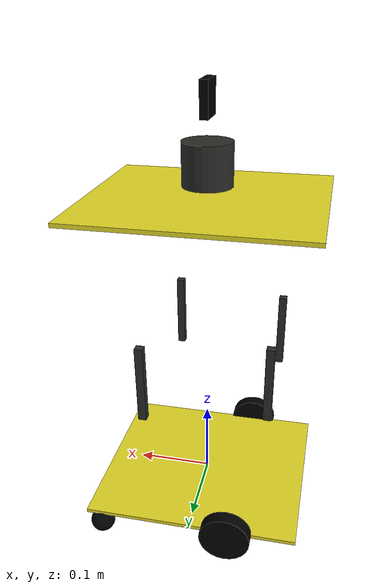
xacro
<?xml version="1.0"?>

<robot name="mrobot" xmlns:xacro="http://www.ros.org/wiki/xacro">
	<!--car-->
	<xacro:include filename="$(find mrobot_gazebo)/urdf/my_gazebo_robot_car.urdf.xacro" />
	<xacro:include filename="$(find mrobot_gazebo)/urdf/camera.xacro" />
	<xacro:include filename="$(find mrobot_gazebo)/urdf/my_laser.urdf.xacro" />
	<xacro:include filename="$(find mrobot_gazebo)/urdf/my_sensors_laser.urdf.xacro" />
	<xacro:property name="camera_offset_x" value="0" />
	<xacro:property name="camera_offset_y" value="0" />
        <xacro:property name="camera_offset_z" value="0.07" />
	<!-- Body of mrobot, with plates, standoffs -->

	<mrobot_body/>
	<!-- Attach the Kinect -->
	<joint name="camera_joint" type="fixed">
	<origin xyz="${camera_offset_x} ${camera_offset_y} ${camera_offset_z}" rpy="0 0 0" />
	<parent link="laser"/>
	<child link="camera_link"/>
	</joint>
	<xacro:usb_camera prefix="camera"/>
</robot>

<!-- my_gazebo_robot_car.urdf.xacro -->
<robot name="mrobot" xmlns:xacro="http://www.ros.org/wiki/xacro">
    <!-- Defining the colors used in this robot -->
    <material name="Black">
        <color rgba="0 0 0 1"/>
    </material>

    <material name="White">
        <color rgba="1 1 1 1"/>
    </material>

    <material name="Blue">
        <color rgba="0 0 1 1"/>
    </material>

    <material name="Red">
        <color rgba="1 0 0 1"/>
    </material>

    <!-- PROPERTY LIST -->
    <!--All units in m-kg-s-radians unit system -->
    <xacro:property name="M_PI" value="3.1415926535897931" />

    <xacro:property name="base_link_length_up" value="0.005"/>
    <xacro:property name="base_link_radius" value="0.13"/>

    <!-- Main body length, width, height and mass -->
    <xacro:property name="base_link_mass"        value="0.5" />
    <xacro:property name="base_link_width" value="0.25"/>
    <xacro:property name="base_link_length" value="0.28"/>
    <xacro:property name="base_link_hight" value="0.005"/>

    <xacro:property name="motor_x" value="-0.05"/>

    <!-- Caster radius and mass -->
    <xacro:property name="caster_radius"          value="0.016" />
    <xacro:property name="caster_mass"            value="0.01" />
    <xacro:property name="caster_joint_origin_x"  value="-0.12" />

    <!-- Wheel radius, height and mass -->
    <xacro:property name="wheel_radius" value="0.033" />
    <xacro:property name="wheel_height" value="0.017" />
    <xacro:property name="wheel_mass"   value="0.1" />

    <!-- plate height and mass -->
    <xacro:property name="plate_mass"   value="0.05"/>
    <xacro:property name="plate_height" value="0.40"/>
    <xacro:property name="standoff_x"   value="0.12"/>
    <xacro:property name="standoff_y"   value="0.10"/>

    <!-- Macro for inertia matrix -->
    <xacro:macro name="sphere_inertial_matrix" params="m r">
        <inertial>
            <mass value="${m}" />
            <inertia ixx="${2*m*r*r/5}" ixy="0" ixz="0"
                iyy="${2*m*r*r/5}" iyz="0"
                izz="${2*m*r*r/5}" />
        </inertial>
    </xacro:macro>

    <xacro:macro name="cylinder_inertial_matrix" params="m r h">
        <inertial>
            <mass value="${m}" />
            <inertia ixx="${m*(3*r*r+h*h)/12}" ixy = "0" ixz = "0"
                iyy="${m*(3*r*r+h*h)/12}" iyz = "0"
                izz="${m*r*r/2}" />
        </inertial>
    </xacro:macro>

    <xacro:macro name="box_inertial_matrix" params="m w h d">
        <inertial>
            <mass value="${m}" />
            <inertia ixx="${m*(h*h+d*d)/12}" ixy = "0" ixz = "0"
                iyy="${m*(w*w+d*d)/12}" iyz = "0"
                izz="${m*(w*w+h*h)/12}" />
        </inertial>
    </xacro:macro>

    <!-- Macro for wheel joint -->
    <xacro:macro name="wheel" params="lr translateY">
        <!-- lr: left, right -->
        <link name="wheel_${lr}_link">
            <visual>
                <origin xyz="0 0 0" rpy="${M_PI/2} 0  0 " />
                <geometry>
                    <cylinder length="${wheel_height}" radius="${wheel_radius}" />
                </geometry>
                <material name="Black" />
            </visual>
            <collision>
                <origin xyz="0 0 0" rpy="${M_PI/2} 0 0 " />
                <geometry>
                    <cylinder length="${wheel_height}" radius="${wheel_radius}" />
                </geometry>
            </collision>
            <cylinder_inertial_matrix  m="${wheel_mass}" r="${wheel_radius}" h="${wheel_height}" />
        </link>

        <gazebo reference="wheel_${lr}_link">
            <material>Gazebo/Black</material>
        </gazebo>

        <joint name="base_to_wheel_${lr}_joint" type="continuous">
            <parent link="base_link"/>
            <child link="wheel_${lr}_link"/>
            <origin xyz="${motor_x} ${translateY * base_link_radius} 0" rpy="0 0 0" />
            <axis xyz="0 1 0" rpy="0  0" />
        </joint>

        <!-- Transmission is important to link the joints and the controller -->
        <transmission name="wheel_${lr}_joint_trans">
            <type>transmission_interface/SimpleTransmission</type>
            <joint name="base_to_wheel_${lr}_joint" />
            <actuator name="wheel_${lr}_joint_motor">
                <hardwareInterface>VelocityJointInterface</hardwareInterface>
                <mechanicalReduction>1</mechanicalReduction>
            </actuator>
        </transmission>
    </xacro:macro>

    <!-- Macro for caster joint -->
    <xacro:macro name="caster" params="fb translateX casY">
        <!-- fb: front, back -->
        <link name="${fb}_caster_link">
            <visual>
                <origin xyz="0 0 0 " rpy="0 0 0" />
                <geometry>
                    <sphere radius="${caster_radius}" />
                </geometry>
                <material name="Black" />
            </visual>
            <collision>
                <geometry>
                    <sphere radius="${caster_radius}" />
                </geometry>
                <origin xyz="0 0 0 " rpy="0 0 0" />
            </collision>
            <sphere_inertial_matrix  m="${caster_mass}" r="${caster_radius}" />
        </link>

        <gazebo reference="${fb}_caster_link">
            <material>Gazebo/Black</material>
        </gazebo>

        <joint name="base_to_${fb}_caster_joint" type="fixed">
            <parent link="base_link"/>
            <child link="${fb}_caster_link"/>
            <origin xyz="${translateX*caster_joint_origin_x} ${casY*caster_joint_origin_x} ${-caster_radius}" rpy="0 0 0"/>
        </joint>
    </xacro:macro>

    <!-- Macro for plate joint -->
    <xacro:macro name="plate" params="num parent">
        <link name="plate_${num}_link">
	    <box_inertial_matrix m="0.1" w="${base_link_width}" h="${base_link_hight}" d="${base_link_length}" />

            <visual>
                <origin xyz=" 0 0 0 " rpy="0 0 0" />
                <geometry>
		    <box size="${base_link_length} ${base_link_width} ${base_link_hight}" />
                </geometry>
                <material name="yellow"/>
            </visual>

            <collision>
                <origin xyz="0.0 0.0 0.0" rpy="0 0 0" />
                <geometry>
		    <box size="${base_link_length} ${base_link_width} ${base_link_hight}" />
                </geometry>
            </collision>
        </link>
        <gazebo reference="plate_${num}_link">
            <material>Gazebo/Blue</material>
        </gazebo>
        <joint name="plate_${num}_joint" type="fixed">
            <origin xyz="0 0 ${plate_height}" rpy="0 0 0" />
            <parent link="${parent}"/>
            <child link="plate_${num}_link" />
        </joint>
    </xacro:macro>

    <!-- Macro for standoff joint -->
    <xacro:macro name="mrobot_standoff_2in" params="parent number x_loc y_loc z_loc">
        <joint name="standoff_2in_${number}_joint" type="fixed">
            <origin xyz="${x_loc} ${y_loc} ${z_loc}" rpy="0 0 0" />
            <parent link="${parent}"/>
            <child link="standoff_2in_${number}_link" />
        </joint>

        <link name="standoff_2in_${number}_link">
            <inertial>
                <mass value="0.001" />
                <origin xyz="0 0 0" />
                <inertia ixx="0.0001" ixy="0.0" ixz="0.0"
          iyy="0.0001" iyz="0.0"
          izz="0.0001" />
            </inertial>

            <visual>
                <origin xyz=" 0 0 0 " rpy="0 0 0" />
                <geometry>
                    <box size="0.01 0.01 0.1" />
                </geometry>
                <material name="black">
                    <color rgba="0.16 0.17 0.15 0.9"/>
                </material>
            </visual>

            <collision>
                <origin xyz="0.0 0.0 0.0" rpy="0 0 0" />
                <geometry>
                    <box size="0.01 0.01 0.1" />
                </geometry>
            </collision>
        </link>
    </xacro:macro>

    <!-- BASE-FOOTPRINT -->
    <!-- base_footprint is a fictitious link(frame) that is on the ground right below base_link origin -->
    <xacro:macro name="mrobot_body">

        <!-- BASE-LINK -->
        <!--Actual body/chassis of the robot-->
        <link name="base_link">
            <box_inertial_matrix m="${base_link_mass}" w="${base_link_width}" h="${base_link_hight}" d="${base_link_length}" />
            <visual>
                <origin xyz=" 0 0 0" rpy="0 0 0" />
                <geometry>
                    <box size="${base_link_length} ${base_link_width} ${base_link_hight}" />
                </geometry>
                <material name="yellow" />
            </visual>

            <collision>
                <origin xyz="0 0 0" rpy="0 0 0" />
                <geometry>
		    <box size="${base_link_length} ${base_link_width} ${base_link_hight}" />
                </geometry>
            </collision>
        </link>
        <gazebo reference="base_link">
            <material>Gazebo/Red</material>
        </gazebo>

        <!-- Wheel Definitions -->
        <wheel lr="right"  translateY="1" />
        <wheel lr="left"  translateY="-1" />

        <!-- Casters Definitions -->
        <caster fb="front"  translateX="-1" casY="1" />
        <caster fb="front2"  translateX="-1" casY="-1" />

	<!-- standoff Definitions -->
        <mrobot_standoff_2in parent="base_link" number="1" x_loc="-${standoff_x/2 + 0.03}" y_loc="-${standoff_y - 0.03}" z_loc="${plate_height/2}"/>
        <mrobot_standoff_2in parent="base_link" number="2" x_loc="-${standoff_x/2 + 0.03}" y_loc="${standoff_y - 0.03}" z_loc="${plate_height/2}"/>
        <mrobot_standoff_2in parent="base_link" number="3" x_loc="${standoff_x/2}" y_loc="-${standoff_y}" z_loc="${plate_height/2}"/>
        <mrobot_standoff_2in parent="base_link" number="4" x_loc="${standoff_x/2}" y_loc="${standoff_y}" z_loc="${plate_height/2}"/>

	<!-- plate Definitions -->
	<plate num="1"  parent="base_link" />

        <!-- controller -->
        <gazebo>
            <plugin name="differential_drive_controller" filename="libgazebo_ros_diff_drive.so">
                <rosDebugLevel>Debug</rosDebugLevel>
                <publishWheelTF>true</publishWheelTF>
                <robotNamespace>/</robotNamespace>
                <publishTf>1</publishTf>
                <publishWheelJointState>true</publishWheelJointState>
                <alwaysOn>true</alwaysOn>
                <updateRate>100.0</updateRate>
                <legacyMode>true</legacyMode>
                <leftJoint>base_to_wheel_left_joint</leftJoint>
                <rightJoint>base_to_wheel_right_joint</rightJoint>
                <wheelSeparation>${base_link_radius*2}</wheelSeparation>
                <wheelDiameter>${2*wheel_radius}</wheelDiameter>
                <broadcastTF>1</broadcastTF>
                <wheelTorque>30</wheelTorque>
                <wheelAcceleration>1.8</wheelAcceleration>
                <commandTopic>cmd_vel</commandTopic>
                <odometryFrame>odom</odometryFrame>
                <odometryTopic>odom</odometryTopic>
                <robotBaseFrame>base_footprint</robotBaseFrame>
            </plugin>
        </gazebo>

    </xacro:macro>

</robot>

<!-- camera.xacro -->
<robot name="camera" xmlns:xacro="http://www.ros.org/wiki/xacro">

	<xacro:macro name="usb_camera" params="prefix:=camera">
		<link name="${prefix}_link">
			<inertial>
				<mass value="0.1"/>
				<origin xyz="0 0 0"/>
				<inertia ixx="0.01" ixy="0.0" ixz="0.0" iyy="0.01" iyz="0.0" izz="0.01"/>
			</inertial>
			<visual>
				<origin xyz="0 0 0" rpy="0 0 0"/>
				<geometry>
					<box size="0.01 0.04 0.04"/>
				</geometry>
				<material name="Black"/>
			</visual>
			<collision>
				<origin xyz="0 0 0" rpy="0 0 0"/>
				<geometry>
					<box size="0.01 0.04 0.04"/>
				</geometry>
			</collision>
		</link>
		<gazebo reference="${prefix}_link">
            <material>Gazebo/Black</material>
        </gazebo>

        <gazebo reference="${prefix}_link">
            <sensor type="camera" name="camera_node">
                <update_rate>30.0</update_rate>
                <camera name="head">
                    <horizontal_fov>1.3962634</horizontal_fov>
                    <image>
                        <width>1280</width>
                        <height>720</height>
                        <format>R8G8B8</format>
                    </image>
                    <clip>
                        <near>0.02</near>
                        <far>300</far>
                    </clip>
                    <noise>
                        <type>gaussian</type>
                        <mean>0.0</mean>
                        <stddev>0.007</stddev>
                    </noise>
                </camera>
                <plugin name="gazebo_camera" filename="libgazebo_ros_camera.so">
                    <alwaysOn>true</alwaysOn>
                    <updateRate>0.0</updateRate>
                    <cameraName>/camera</cameraName>
                    <imageTopicName>image_raw</imageTopicName>
                    <cameraInfoTopicName>camera_info</cameraInfoTopicName>
                    <frameName>camera_link</frameName>
                    <hackBaseline>0.07</hackBaseline>
                    <distortionK1>0.0</distortionK1>
                    <distortionK2>0.0</distortionK2>
                    <distortionK3>0.0</distortionK3>
                    <distortionT1>0.0</distortionT1>
                    <distortionT2>0.0</distortionT2>
                </plugin>
            </sensor>
        </gazebo>
	</xacro:macro>
</robot>

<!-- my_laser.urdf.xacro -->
<robot name="my_laser" xmlns:xacro="http://wiki.ros.org/xacro">
    <xacro:property name="support_length" value="0.15" />
    <xacro:property name="support_radius" value="0.01" />
    <xacro:property name="support_x" value="0.2" />
    <xacro:property name="support_y" value="0.0" />
    <xacro:property name="support_z" value="0.25}" />
    <xacro:property name="support_m" value="0.02" />
    <xacro:property name="laser_length" value="0.05" />
    <xacro:property name="laser_radius" value="0.03" />
    <xacro:property name="laser_x" value="0.0" />
    <xacro:property name="laser_y" value="0.0" />
    <xacro:property name="laser_z" value="0.04" />

    <xacro:property name="laser_m" value="0.1" />

    <link name="laser">
        <visual>
            <geometry>
                <cylinder radius="${laser_radius}" length="${laser_length}" />
            </geometry>
            <origin xyz="0.0 0.0 0.0" rpy="0.0 0.0 0.0" />
            <material name="black" />
        </visual>
        <collision>
            <geometry>
                <cylinder radius="${laser_radius}" length="${laser_length}" />
            </geometry>
            <origin xyz="0.0 0.0 0.0" rpy="0.0 0.0 0.0" />
        </collision>
        <xacro:cylinder_inertial_matrix m="${laser_m}" r="${laser_radius}" h="${laser_length}" />
    </link>

    <joint name="laser2support" type="fixed">
        <parent link="plate_1_link" />
        <child link="laser" />
        <origin xyz="${laser_x} ${laser_y} ${laser_z}" />
    </joint>
    <gazebo reference="laser">
        <material>Gazebo/Black</material>
    </gazebo>
</robot>
